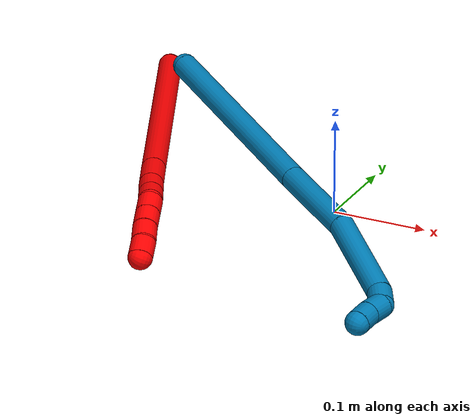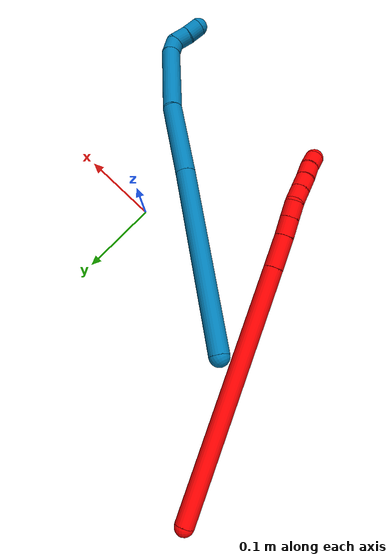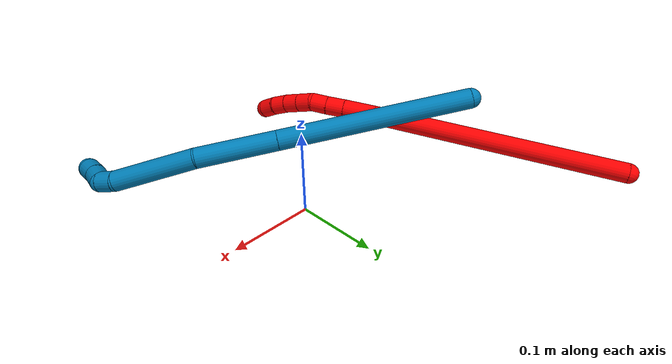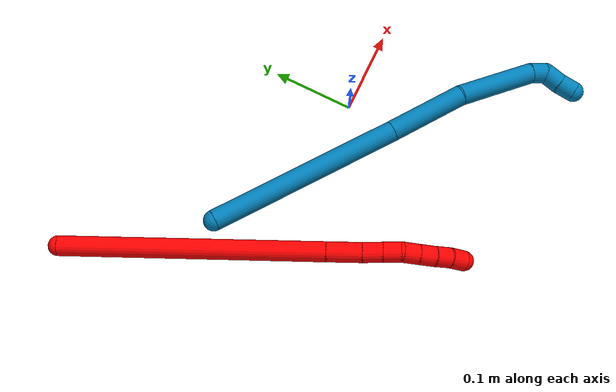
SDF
<sdf version="1.7">
 <world name="default">
  <model name="2">
   <static>0</static>
   <link name="2">
    <collision name="collision-cylinder-e_1_1_4">
     <pose>0.129001 -0.098259 -0.023393 1.80452 0.906522 1.10516</pose>
     <geometry><cylinder><radius>0.0125</radius><length>0.327679</length></cylinder></geometry>
     <surface>
      <friction><ode><mu>1.16</mu><mu2>1.16</mu2><slip1>0</slip1><slip2>0</slip2></ode></friction>
      <contact><ode><kp>1e+06</kp><kd>1</kd><max_vel>0</max_vel><min_depth>0.001</min_depth></ode></contact>
     </surface>
    </collision>
    <visual name="visual-cylinder-e_1_1_4">
     <pose>0.129001 -0.098259 -0.023393 1.80452 0.906522 1.10516</pose>
     <geometry><cylinder><radius>0.0125</radius><length>0.327679</length></cylinder></geometry>
     <material><ambient>1 0 0 1</ambient></material>
    </visual>
    <collision name="collision-cylinder-e_2_4_5">
     <pose>0.275159 -0.20929 -0.049686 1.79404 0.918792 1.10941</pose>
     <geometry><cylinder><radius>0.0125</radius><length>0.043169</length></cylinder></geometry>
     <surface>
      <friction><ode><mu>1.16</mu><mu2>1.16</mu2><slip1>0</slip1><slip2>0</slip2></ode></friction>
      <contact><ode><kp>1e+06</kp><kd>1</kd><max_vel>0</max_vel><min_depth>0.001</min_depth></ode></contact>
     </surface>
    </collision>
    <visual name="visual-cylinder-e_2_4_5">
     <pose>0.275159 -0.20929 -0.049686 1.79404 0.918792 1.10941</pose>
     <geometry><cylinder><radius>0.0125</radius><length>0.043169</length></cylinder></geometry>
     <material><ambient>1 0 0 1</ambient></material>
    </visual>
    <collision name="collision-cylinder-e_3_5_6">
     <pose>0.302155 -0.229583 -0.05383 1.73476 0.911549 1.04811</pose>
     <geometry><cylinder><radius>0.0125</radius><length>0.024894</length></cylinder></geometry>
     <surface>
      <friction><ode><mu>1.16</mu><mu2>1.16</mu2><slip1>0</slip1><slip2>0</slip2></ode></friction>
      <contact><ode><kp>1e+06</kp><kd>1</kd><max_vel>0</max_vel><min_depth>0.001</min_depth></ode></contact>
     </surface>
    </collision>
    <visual name="visual-cylinder-e_3_5_6">
     <pose>0.302155 -0.229583 -0.05383 1.73476 0.911549 1.04811</pose>
     <geometry><cylinder><radius>0.0125</radius><length>0.024894</length></cylinder></geometry>
     <material><ambient>1 0 0 1</ambient></material>
    </visual>
    <collision name="collision-cylinder-e_4_6_7">
     <pose>0.320652 -0.244052 -0.056391 1.75817 0.88602 1.04047</pose>
     <geometry><cylinder><radius>0.0125</radius><length>0.022357</length></cylinder></geometry>
     <surface>
      <friction><ode><mu>1.16</mu><mu2>1.16</mu2><slip1>0</slip1><slip2>0</slip2></ode></friction>
      <contact><ode><kp>1e+06</kp><kd>1</kd><max_vel>0</max_vel><min_depth>0.001</min_depth></ode></contact>
     </surface>
    </collision>
    <visual name="visual-cylinder-e_4_6_7">
     <pose>0.320652 -0.244052 -0.056391 1.75817 0.88602 1.04047</pose>
     <geometry><cylinder><radius>0.0125</radius><length>0.022357</length></cylinder></geometry>
     <material><ambient>1 0 0 1</ambient></material>
    </visual>
    <collision name="collision-cylinder-e_5_7_8">
     <pose>0.339159 -0.254278 -0.058471 1.79922 1.24141 1.46592</pose>
     <geometry><cylinder><radius>0.0125</radius><length>0.020816</length></cylinder></geometry>
     <surface>
      <friction><ode><mu>1.16</mu><mu2>1.16</mu2><slip1>0</slip1><slip2>0</slip2></ode></friction>
      <contact><ode><kp>1e+06</kp><kd>1</kd><max_vel>0</max_vel><min_depth>0.001</min_depth></ode></contact>
     </surface>
    </collision>
    <visual name="visual-cylinder-e_5_7_8">
     <pose>0.339159 -0.254278 -0.058471 1.79922 1.24141 1.46592</pose>
     <geometry><cylinder><radius>0.0125</radius><length>0.020816</length></cylinder></geometry>
     <material><ambient>1 0 0 1</ambient></material>
    </visual>
    <collision name="collision-cylinder-e_6_8_9">
     <pose>0.358862 -0.260855 -0.060003 1.80019 1.23979 1.4652</pose>
     <geometry><cylinder><radius>0.0125</radius><length>0.02084</length></cylinder></geometry>
     <surface>
      <friction><ode><mu>1.16</mu><mu2>1.16</mu2><slip1>0</slip1><slip2>0</slip2></ode></friction>
      <contact><ode><kp>1e+06</kp><kd>1</kd><max_vel>0</max_vel><min_depth>0.001</min_depth></ode></contact>
     </surface>
    </collision>
    <visual name="visual-cylinder-e_6_8_9">
     <pose>0.358862 -0.260855 -0.060003 1.80019 1.23979 1.4652</pose>
     <geometry><cylinder><radius>0.0125</radius><length>0.02084</length></cylinder></geometry>
     <material><ambient>1 0 0 1</ambient></material>
    </visual>
    <collision name="collision-cylinder-e_7_9_10">
     <pose>0.378453 -0.266883 -0.060639 1.52185 1.29703 1.25022</pose>
     <geometry><cylinder><radius>0.0125</radius><length>0.020226</length></cylinder></geometry>
     <surface>
      <friction><ode><mu>1.16</mu><mu2>1.16</mu2><slip1>0</slip1><slip2>0</slip2></ode></friction>
      <contact><ode><kp>1e+06</kp><kd>1</kd><max_vel>0</max_vel><min_depth>0.001</min_depth></ode></contact>
     </surface>
    </collision>
    <visual name="visual-cylinder-e_7_9_10">
     <pose>0.378453 -0.266883 -0.060639 1.52185 1.29703 1.25022</pose>
     <geometry><cylinder><radius>0.0125</radius><length>0.020226</length></cylinder></geometry>
     <material><ambient>1 0 0 1</ambient></material>
    </visual>
    <collision name="collision-cylinder-e_8_10_2">
     <pose>0.398127 -0.27078 -0.060778 1.80035 1.45092 1.682</pose>
     <geometry><cylinder><radius>0.0125</radius><length>0.020019</length></cylinder></geometry>
     <surface>
      <friction><ode><mu>1.16</mu><mu2>1.16</mu2><slip1>0</slip1><slip2>0</slip2></ode></friction>
      <contact><ode><kp>1e+06</kp><kd>1</kd><max_vel>0</max_vel><min_depth>0.001</min_depth></ode></contact>
     </surface>
    </collision>
    <visual name="visual-cylinder-e_8_10_2">
     <pose>0.398127 -0.27078 -0.060778 1.80035 1.45092 1.682</pose>
     <geometry><cylinder><radius>0.0125</radius><length>0.020019</length></cylinder></geometry>
     <material><ambient>1 0 0 1</ambient></material>
    </visual>
    <collision name="collision-sphere-2">
     <pose>0.408065 -0.271945 -0.06105 0 -0 0</pose>
     <geometry><sphere><radius>0.0125</radius></sphere></geometry>
     <surface>
      <friction><ode><mu>1.16</mu><mu2>1.16</mu2><slip1>0</slip1><slip2>0</slip2></ode></friction>
      <contact><ode><kp>1e+06</kp><kd>1</kd><max_vel>0</max_vel><min_depth>0.001</min_depth></ode></contact>
     </surface>
    </collision>
    <visual name="visual-sphere-2">
     <pose>0.408065 -0.271945 -0.06105 0 -0 0</pose>
     <geometry><sphere><radius>0.0125</radius></sphere></geometry>
     <material><ambient>1 0 0 1</ambient></material>
    </visual>
    <collision name="collision-sphere-10">
     <pose>0.388189 -0.269614 -0.060506 0 -0 0</pose>
     <geometry><sphere><radius>0.0125</radius></sphere></geometry>
     <surface>
      <friction><ode><mu>1.16</mu><mu2>1.16</mu2><slip1>0</slip1><slip2>0</slip2></ode></friction>
      <contact><ode><kp>1e+06</kp><kd>1</kd><max_vel>0</max_vel><min_depth>0.001</min_depth></ode></contact>
     </surface>
    </collision>
    <visual name="visual-sphere-10">
     <pose>0.388189 -0.269614 -0.060506 0 -0 0</pose>
     <geometry><sphere><radius>0.0125</radius></sphere></geometry>
     <material><ambient>1 0 0 1</ambient></material>
    </visual>
    <collision name="collision-sphere-9">
     <pose>0.368716 -0.264152 -0.060773 0 -0 0</pose>
     <geometry><sphere><radius>0.0125</radius></sphere></geometry>
     <surface>
      <friction><ode><mu>1.16</mu><mu2>1.16</mu2><slip1>0</slip1><slip2>0</slip2></ode></friction>
      <contact><ode><kp>1e+06</kp><kd>1</kd><max_vel>0</max_vel><min_depth>0.001</min_depth></ode></contact>
     </surface>
    </collision>
    <visual name="visual-sphere-9">
     <pose>0.368716 -0.264152 -0.060773 0 -0 0</pose>
     <geometry><sphere><radius>0.0125</radius></sphere></geometry>
     <material><ambient>1 0 0 1</ambient></material>
    </visual>
    <collision name="collision-sphere-4">
     <pose>0.258003 -0.196517 -0.046786 0 -0 0</pose>
     <geometry><sphere><radius>0.0125</radius></sphere></geometry>
     <surface>
      <friction><ode><mu>1.16</mu><mu2>1.16</mu2><slip1>0</slip1><slip2>0</slip2></ode></friction>
      <contact><ode><kp>1e+06</kp><kd>1</kd><max_vel>0</max_vel><min_depth>0.001</min_depth></ode></contact>
     </surface>
    </collision>
    <visual name="visual-sphere-4">
     <pose>0.258003 -0.196517 -0.046786 0 -0 0</pose>
     <geometry><sphere><radius>0.0125</radius></sphere></geometry>
     <material><ambient>1 0 0 1</ambient></material>
    </visual>
    <collision name="collision-sphere-1">
     <geometry><sphere><radius>0.0125</radius></sphere></geometry>
     <surface>
      <friction><ode><mu>1.16</mu><mu2>1.16</mu2><slip1>0</slip1><slip2>0</slip2></ode></friction>
      <contact><ode><kp>1e+06</kp><kd>1</kd><max_vel>0</max_vel><min_depth>0.001</min_depth></ode></contact>
     </surface>
    </collision>
    <visual name="visual-sphere-1">
     <geometry><sphere><radius>0.0125</radius></sphere></geometry>
     <material><ambient>1 0 0 1</ambient></material>
    </visual>
    <collision name="collision-sphere-8">
     <pose>0.349008 -0.257557 -0.059233 0 -0 0</pose>
     <geometry><sphere><radius>0.0125</radius></sphere></geometry>
     <surface>
      <friction><ode><mu>1.16</mu><mu2>1.16</mu2><slip1>0</slip1><slip2>0</slip2></ode></friction>
      <contact><ode><kp>1e+06</kp><kd>1</kd><max_vel>0</max_vel><min_depth>0.001</min_depth></ode></contact>
     </surface>
    </collision>
    <visual name="visual-sphere-8">
     <pose>0.349008 -0.257557 -0.059233 0 -0 0</pose>
     <geometry><sphere><radius>0.0125</radius></sphere></geometry>
     <material><ambient>1 0 0 1</ambient></material>
    </visual>
    <collision name="collision-sphere-5">
     <pose>0.292316 -0.222062 -0.052585 0 -0 0</pose>
     <geometry><sphere><radius>0.0125</radius></sphere></geometry>
     <surface>
      <friction><ode><mu>1.16</mu><mu2>1.16</mu2><slip1>0</slip1><slip2>0</slip2></ode></friction>
      <contact><ode><kp>1e+06</kp><kd>1</kd><max_vel>0</max_vel><min_depth>0.001</min_depth></ode></contact>
     </surface>
    </collision>
    <visual name="visual-sphere-5">
     <pose>0.292316 -0.222062 -0.052585 0 -0 0</pose>
     <geometry><sphere><radius>0.0125</radius></sphere></geometry>
     <material><ambient>1 0 0 1</ambient></material>
    </visual>
    <collision name="collision-sphere-6">
     <pose>0.311994 -0.237105 -0.055074 0 -0 0</pose>
     <geometry><sphere><radius>0.0125</radius></sphere></geometry>
     <surface>
      <friction><ode><mu>1.16</mu><mu2>1.16</mu2><slip1>0</slip1><slip2>0</slip2></ode></friction>
      <contact><ode><kp>1e+06</kp><kd>1</kd><max_vel>0</max_vel><min_depth>0.001</min_depth></ode></contact>
     </surface>
    </collision>
    <visual name="visual-sphere-6">
     <pose>0.311994 -0.237105 -0.055074 0 -0 0</pose>
     <geometry><sphere><radius>0.0125</radius></sphere></geometry>
     <material><ambient>1 0 0 1</ambient></material>
    </visual>
    <collision name="collision-sphere-7">
     <pose>0.329311 -0.250999 -0.057708 0 -0 0</pose>
     <geometry><sphere><radius>0.0125</radius></sphere></geometry>
     <surface>
      <friction><ode><mu>1.16</mu><mu2>1.16</mu2><slip1>0</slip1><slip2>0</slip2></ode></friction>
      <contact><ode><kp>1e+06</kp><kd>1</kd><max_vel>0</max_vel><min_depth>0.001</min_depth></ode></contact>
     </surface>
    </collision>
    <visual name="visual-sphere-7">
     <pose>0.329311 -0.250999 -0.057708 0 -0 0</pose>
     <geometry><sphere><radius>0.0125</radius></sphere></geometry>
     <material><ambient>1 0 0 1</ambient></material>
    </visual>
    <inertial>
     <pose>0.198007 -0.147903 -0.034644 0 -0 0</pose>
     <mass>0.5</mass>
     <inertia>
      <ixx>0.002481</ixx>
      <ixy>0</ixy>
      <ixz>0</ixz>
      <iyy>0.003331</iyy>
      <iyz>0</iyz>
      <izz>-0.000564</izz>
     </inertia>
    </inertial>
   </link>
   <pose>-0.312466 0.243422 0.012019 -2.08499 0.576401 -1.32056</pose>
  </model>
  <model name="9">
   <static>0</static>
   <link name="9">
    <collision name="collision-cylinder-e_1_1_4">
     <pose>0.017067 -0.03376 0.112961 0.290415 0.143764 0.021059</pose>
     <geometry><cylinder><radius>0.0125</radius><length>0.238254</length></cylinder></geometry>
     <surface>
      <friction><ode><mu>1.16</mu><mu2>1.16</mu2><slip1>0</slip1><slip2>0</slip2></ode></friction>
      <contact><ode><kp>1e+06</kp><kd>1</kd><max_vel>0</max_vel><min_depth>0.001</min_depth></ode></contact>
     </surface>
    </collision>
    <visual name="visual-cylinder-e_1_1_4">
     <pose>0.017067 -0.03376 0.112961 0.290415 0.143764 0.021059</pose>
     <geometry><cylinder><radius>0.0125</radius><length>0.238254</length></cylinder></geometry>
     <material><ambient>0 0.490196 0.709804 1</ambient></material>
    </visual>
    <collision name="collision-cylinder-e_2_4_5">
     <pose>0.040427 -0.080819 0.272537 0.2779 0.129081 0.018077</pose>
     <geometry><cylinder><radius>0.0125</radius><length>0.097764</length></cylinder></geometry>
     <surface>
      <friction><ode><mu>1.16</mu><mu2>1.16</mu2><slip1>0</slip1><slip2>0</slip2></ode></friction>
      <contact><ode><kp>1e+06</kp><kd>1</kd><max_vel>0</max_vel><min_depth>0.001</min_depth></ode></contact>
     </surface>
    </collision>
    <visual name="visual-cylinder-e_2_4_5">
     <pose>0.040427 -0.080819 0.272537 0.2779 0.129081 0.018077</pose>
     <geometry><cylinder><radius>0.0125</radius><length>0.097764</length></cylinder></geometry>
     <material><ambient>0 0.490196 0.709804 1</ambient></material>
    </visual>
    <collision name="collision-cylinder-e_3_5_6">
     <pose>0.062256 -0.111782 0.364318 0.372825 0.310042 0.05893</pose>
     <geometry><cylinder><radius>0.0125</radius><length>0.101851</length></cylinder></geometry>
     <surface>
      <friction><ode><mu>1.16</mu><mu2>1.16</mu2><slip1>0</slip1><slip2>0</slip2></ode></friction>
      <contact><ode><kp>1e+06</kp><kd>1</kd><max_vel>0</max_vel><min_depth>0.001</min_depth></ode></contact>
     </surface>
    </collision>
    <visual name="visual-cylinder-e_3_5_6">
     <pose>0.062256 -0.111782 0.364318 0.372825 0.310042 0.05893</pose>
     <geometry><cylinder><radius>0.0125</radius><length>0.101851</length></cylinder></geometry>
     <material><ambient>0 0.490196 0.709804 1</ambient></material>
    </visual>
    <collision name="collision-cylinder-e_4_6_7">
     <pose>0.080865 -0.13561 0.416949 0.690112 0.307285 0.111212</pose>
     <geometry><cylinder><radius>0.0125</radius><length>0.020312</length></cylinder></geometry>
     <surface>
      <friction><ode><mu>1.16</mu><mu2>1.16</mu2><slip1>0</slip1><slip2>0</slip2></ode></friction>
      <contact><ode><kp>1e+06</kp><kd>1</kd><max_vel>0</max_vel><min_depth>0.001</min_depth></ode></contact>
     </surface>
    </collision>
    <visual name="visual-cylinder-e_4_6_7">
     <pose>0.080865 -0.13561 0.416949 0.690112 0.307285 0.111212</pose>
     <geometry><cylinder><radius>0.0125</radius><length>0.020312</length></cylinder></geometry>
     <material><ambient>0 0.490196 0.709804 1</ambient></material>
    </visual>
    <collision name="collision-cylinder-e_5_7_8">
     <pose>0.086908 -0.152066 0.425472 1.46836 0.279576 0.252615</pose>
     <geometry><cylinder><radius>0.0125</radius><length>0.02153</length></cylinder></geometry>
     <surface>
      <friction><ode><mu>1.16</mu><mu2>1.16</mu2><slip1>0</slip1><slip2>0</slip2></ode></friction>
      <contact><ode><kp>1e+06</kp><kd>1</kd><max_vel>0</max_vel><min_depth>0.001</min_depth></ode></contact>
     </surface>
    </collision>
    <visual name="visual-cylinder-e_5_7_8">
     <pose>0.086908 -0.152066 0.425472 1.46836 0.279576 0.252615</pose>
     <geometry><cylinder><radius>0.0125</radius><length>0.02153</length></cylinder></geometry>
     <material><ambient>0 0.490196 0.709804 1</ambient></material>
    </visual>
    <collision name="collision-cylinder-e_6_8_2">
     <pose>0.092681 -0.171814 0.428909 1.32429 0.279841 0.218708</pose>
     <geometry><cylinder><radius>0.0125</radius><length>0.02029</length></cylinder></geometry>
     <surface>
      <friction><ode><mu>1.16</mu><mu2>1.16</mu2><slip1>0</slip1><slip2>0</slip2></ode></friction>
      <contact><ode><kp>1e+06</kp><kd>1</kd><max_vel>0</max_vel><min_depth>0.001</min_depth></ode></contact>
     </surface>
    </collision>
    <visual name="visual-cylinder-e_6_8_2">
     <pose>0.092681 -0.171814 0.428909 1.32429 0.279841 0.218708</pose>
     <geometry><cylinder><radius>0.0125</radius><length>0.02029</length></cylinder></geometry>
     <material><ambient>0 0.490196 0.709804 1</ambient></material>
    </visual>
    <collision name="collision-sphere-2">
     <pose>0.095483 -0.181269 0.431289 0 -0 0</pose>
     <geometry><sphere><radius>0.0125</radius></sphere></geometry>
     <surface>
      <friction><ode><mu>1.16</mu><mu2>1.16</mu2><slip1>0</slip1><slip2>0</slip2></ode></friction>
      <contact><ode><kp>1e+06</kp><kd>1</kd><max_vel>0</max_vel><min_depth>0.001</min_depth></ode></contact>
     </surface>
    </collision>
    <visual name="visual-sphere-2">
     <pose>0.095483 -0.181269 0.431289 0 -0 0</pose>
     <geometry><sphere><radius>0.0125</radius></sphere></geometry>
     <material><ambient>0 0.490196 0.709804 1</ambient></material>
    </visual>
    <collision name="collision-sphere-4">
     <pose>0.034135 -0.06752 0.225922 0 -0 0</pose>
     <geometry><sphere><radius>0.0125</radius></sphere></geometry>
     <surface>
      <friction><ode><mu>1.16</mu><mu2>1.16</mu2><slip1>0</slip1><slip2>0</slip2></ode></friction>
      <contact><ode><kp>1e+06</kp><kd>1</kd><max_vel>0</max_vel><min_depth>0.001</min_depth></ode></contact>
     </surface>
    </collision>
    <visual name="visual-sphere-4">
     <pose>0.034135 -0.06752 0.225922 0 -0 0</pose>
     <geometry><sphere><radius>0.0125</radius></sphere></geometry>
     <material><ambient>0 0.490196 0.709804 1</ambient></material>
    </visual>
    <collision name="collision-sphere-1">
     <geometry><sphere><radius>0.0125</radius></sphere></geometry>
     <surface>
      <friction><ode><mu>1.16</mu><mu2>1.16</mu2><slip1>0</slip1><slip2>0</slip2></ode></friction>
      <contact><ode><kp>1e+06</kp><kd>1</kd><max_vel>0</max_vel><min_depth>0.001</min_depth></ode></contact>
     </surface>
    </collision>
    <visual name="visual-sphere-1">
     <geometry><sphere><radius>0.0125</radius></sphere></geometry>
     <material><ambient>0 0.490196 0.709804 1</ambient></material>
    </visual>
    <collision name="collision-sphere-8">
     <pose>0.089878 -0.162358 0.42653 0 -0 0</pose>
     <geometry><sphere><radius>0.0125</radius></sphere></geometry>
     <surface>
      <friction><ode><mu>1.16</mu><mu2>1.16</mu2><slip1>0</slip1><slip2>0</slip2></ode></friction>
      <contact><ode><kp>1e+06</kp><kd>1</kd><max_vel>0</max_vel><min_depth>0.001</min_depth></ode></contact>
     </surface>
    </collision>
    <visual name="visual-sphere-8">
     <pose>0.089878 -0.162358 0.42653 0 -0 0</pose>
     <geometry><sphere><radius>0.0125</radius></sphere></geometry>
     <material><ambient>0 0.490196 0.709804 1</ambient></material>
    </visual>
    <collision name="collision-sphere-5">
     <pose>0.046719 -0.094117 0.319153 0 -0 0</pose>
     <geometry><sphere><radius>0.0125</radius></sphere></geometry>
     <surface>
      <friction><ode><mu>1.16</mu><mu2>1.16</mu2><slip1>0</slip1><slip2>0</slip2></ode></friction>
      <contact><ode><kp>1e+06</kp><kd>1</kd><max_vel>0</max_vel><min_depth>0.001</min_depth></ode></contact>
     </surface>
    </collision>
    <visual name="visual-sphere-5">
     <pose>0.046719 -0.094117 0.319153 0 -0 0</pose>
     <geometry><sphere><radius>0.0125</radius></sphere></geometry>
     <material><ambient>0 0.490196 0.709804 1</ambient></material>
    </visual>
    <collision name="collision-sphere-6">
     <pose>0.077793 -0.129447 0.409484 0 -0 0</pose>
     <geometry><sphere><radius>0.0125</radius></sphere></geometry>
     <surface>
      <friction><ode><mu>1.16</mu><mu2>1.16</mu2><slip1>0</slip1><slip2>0</slip2></ode></friction>
      <contact><ode><kp>1e+06</kp><kd>1</kd><max_vel>0</max_vel><min_depth>0.001</min_depth></ode></contact>
     </surface>
    </collision>
    <visual name="visual-sphere-6">
     <pose>0.077793 -0.129447 0.409484 0 -0 0</pose>
     <geometry><sphere><radius>0.0125</radius></sphere></geometry>
     <material><ambient>0 0.490196 0.709804 1</ambient></material>
    </visual>
    <collision name="collision-sphere-7">
     <pose>0.083937 -0.141773 0.424414 0 -0 0</pose>
     <geometry><sphere><radius>0.0125</radius></sphere></geometry>
     <surface>
      <friction><ode><mu>1.16</mu><mu2>1.16</mu2><slip1>0</slip1><slip2>0</slip2></ode></friction>
      <contact><ode><kp>1e+06</kp><kd>1</kd><max_vel>0</max_vel><min_depth>0.001</min_depth></ode></contact>
     </surface>
    </collision>
    <visual name="visual-sphere-7">
     <pose>0.083937 -0.141773 0.424414 0 -0 0</pose>
     <geometry><sphere><radius>0.0125</radius></sphere></geometry>
     <material><ambient>0 0.490196 0.709804 1</ambient></material>
    </visual>
    <inertial>
     <pose>0.039507 -0.073689 0.233991 0 -0 0</pose>
     <mass>0.5</mass>
     <inertia>
      <ixx>0.001336</ixx>
      <ixy>0</ixy>
      <ixz>0</ixz>
      <iyy>0.001273</iyy>
      <iyz>0</iyz>
      <izz>0.000211</izz>
     </inertia>
    </inertial>
   </link>
   <pose>-0.207921 0.074802 0.094139 -1.88156 1.30968 -2.17837</pose>
  </model>
 </world>
</sdf>
